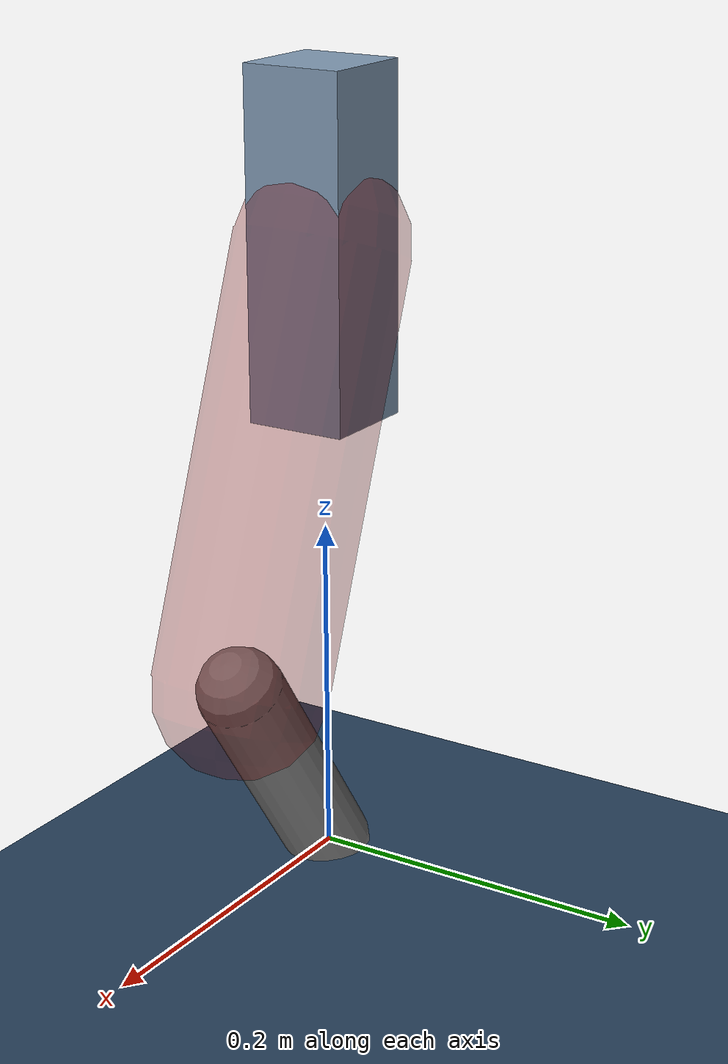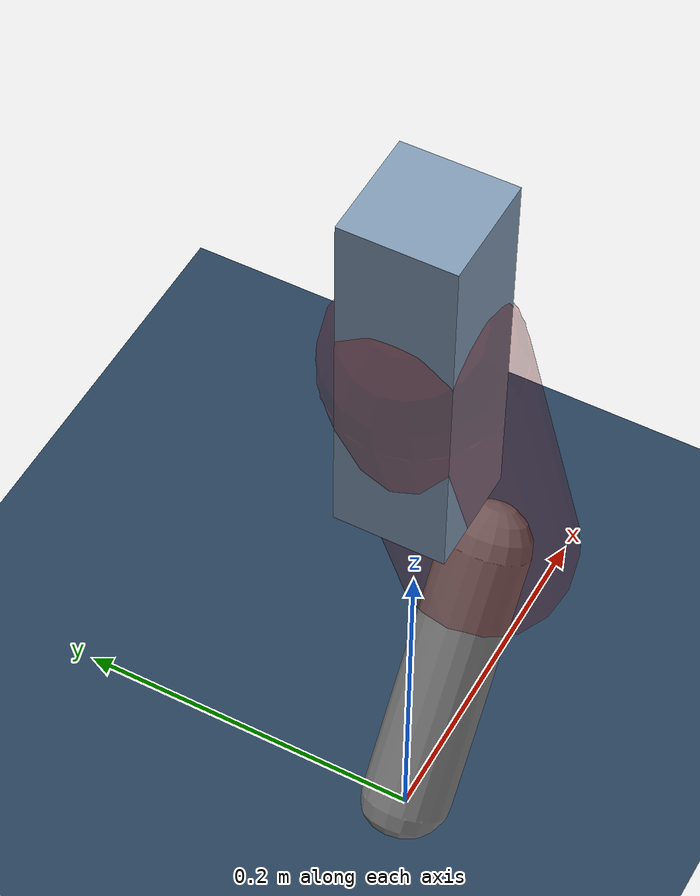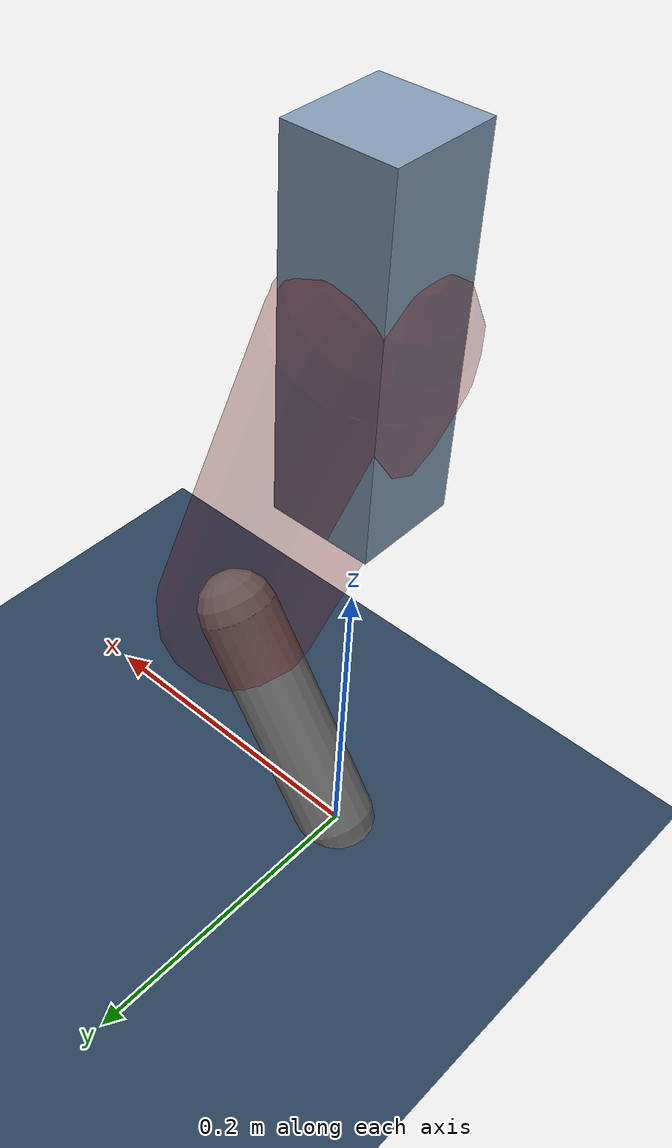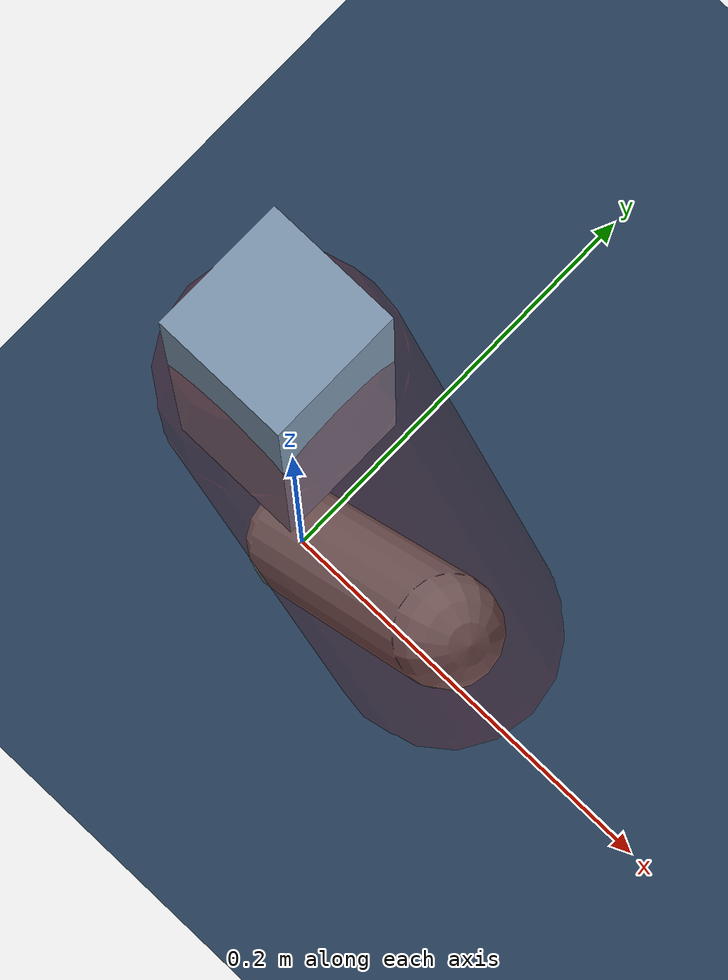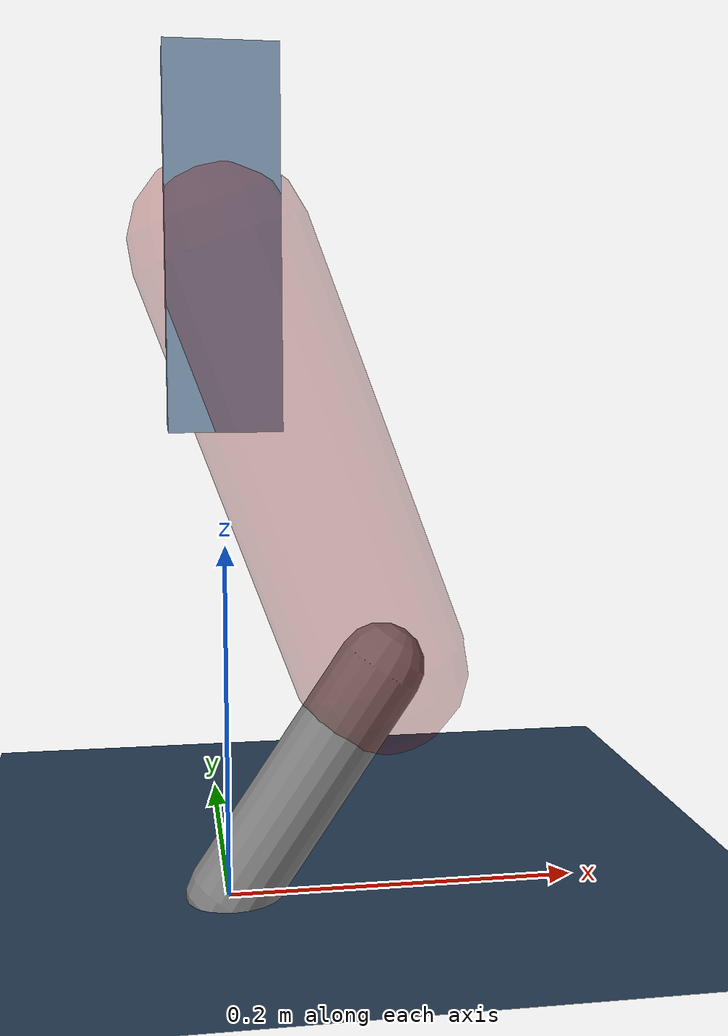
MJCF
<mujoco model="Hopper2D">
	<compiler inertiafromgeom="true" angle="radian" />
	<option timestep="0.001" integrator="implicit" cone="elliptic" solver="Newton" tolerance="1e-10" />

	<default>
		<geom contype="1" conaffinity="1" condim="3" friction="2 0.005 0.0001" solref="0.005 1" />
		<joint limited="true" damping="0.1" />
	</default>

	<asset>
		<texture name="skybox" type="skybox" builtin="gradient" rgb1=".4 .6 .8" rgb2="0 0 0" width="800" height="800" />
		<texture name="grid" type="2d" builtin="checker" rgb1=".1 .2 .3" rgb2=".2 .3 .4" width="300" height="300" mark="edge" markrgb=".2 .3 .4" />
		<material name="ground" texture="grid" texrepeat="1 1" texuniform="true" reflectance="0.1" />
		<material name="leg" rgba="0.5 0.6 0.7 1" />
	</asset>

	<worldbody>

		<geom name="floor" type="plane" size="5 5 0.25" material="ground" />

		<light directional="false" diffuse="0.8 0.8 0.8" specular="0.3 0.3 0.3" pos="0 0 2" dir="0 0 -1" />
		<light mode="targetbodycom" target="base" directional="false" diffuse="0.8 0.8 0.8" specular="0.3 0.3 0.3" pos="0 0 2" dir="0 0 -1" />

		<camera name="fixed" pos="0 -2 1" xyaxes="1 0 0 0 0 1" />
		<camera name="tracking" mode="trackcom" pos="0 -3 1" />

		<body name="root" pos="0 0 0.3649817825161692">
			<joint name="slide_x" type="slide" axis="1 0 0" range="-100 100" />
			<joint name="slide_z" type="slide" axis="0 0 1" range="0 10" />

			<body name="base" pos="0 0 0">
				<geom name="torso" type="box" size="0.03 0.03 0.1" mass="2.14" material="leg" />

				<body name="link1" pos="0 0 0" euler="0 1.2158356167949516 0">
					<joint type="hinge" axis="0 -1 0" pos="0 0 0" name="hinge1" limited="true" range="-3.14 3.14" stiffness="0" damping="0.1" />
					<geom name="thigh" type="capsule" fromto="0 0 0 0.2510200630511169 0 0" size="0.05" rgba="0.5 0 0 0.3" mass="0.859052163932904" />

					<body name="link2" pos="0.2510200630511169 0 0" euler="0 0.9474157986698495 0">
						<joint type="hinge" axis="0 -1 0" pos="0 0 0" name="hinge2" limited="true" range="-3.14 3.14" stiffness="0" damping="0.1" />
						<geom name="shank" type="capsule" fromto="0 0 0 0.15623747318165504 0 0" size="0.025" mass="0.36321372586348954" />

					</body>
				</body>
			</body>
		</body>
	</worldbody>

	<actuator>
		<motor name="torque1" joint="hinge1" ctrlrange="-50.86893151439256 50.86893151439256" ctrllimited="true" gear="1" />
		<motor name="torque2" joint="hinge2" ctrlrange="-21.82209535048456 21.82209535048456" ctrllimited="true" gear="1" />
	</actuator>
</mujoco>
